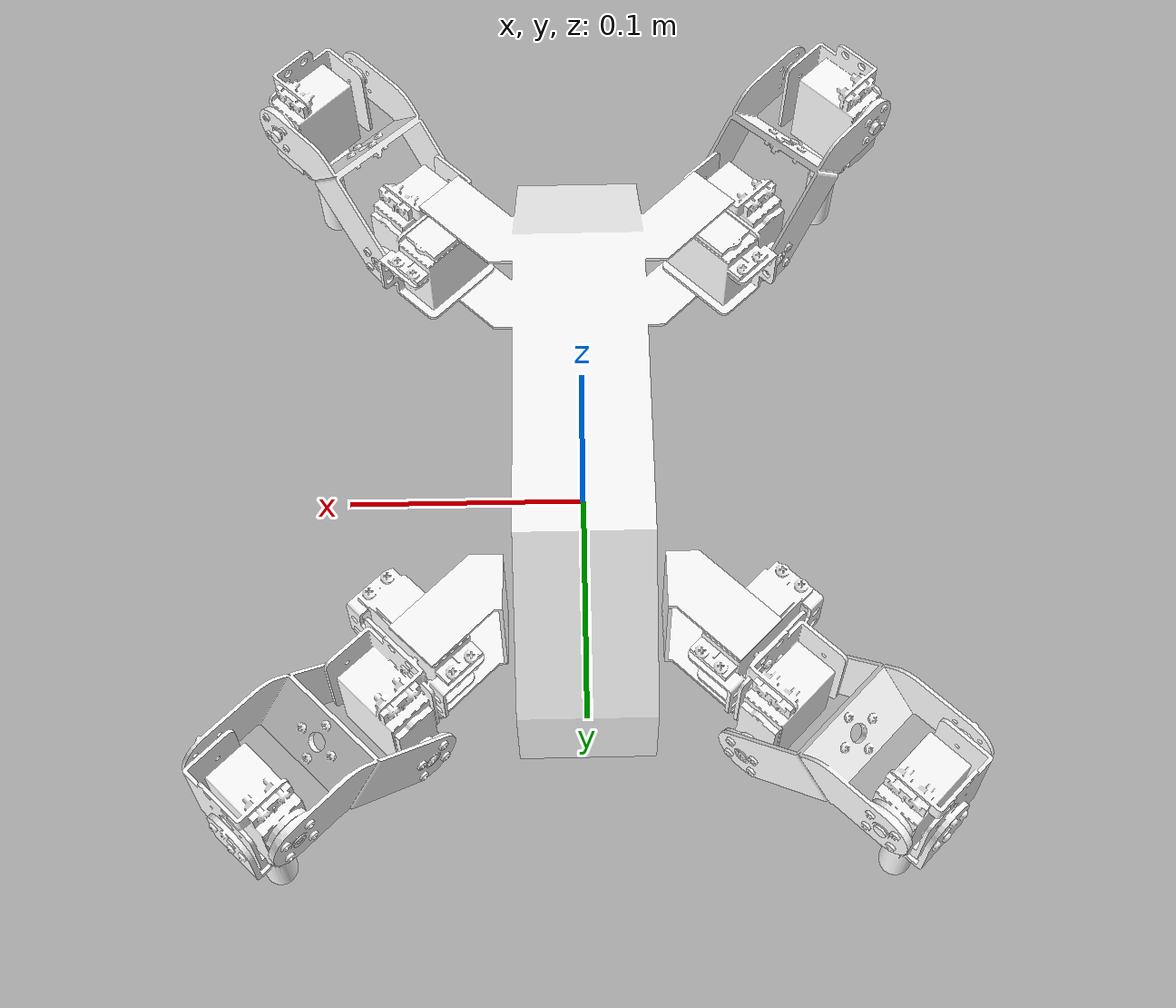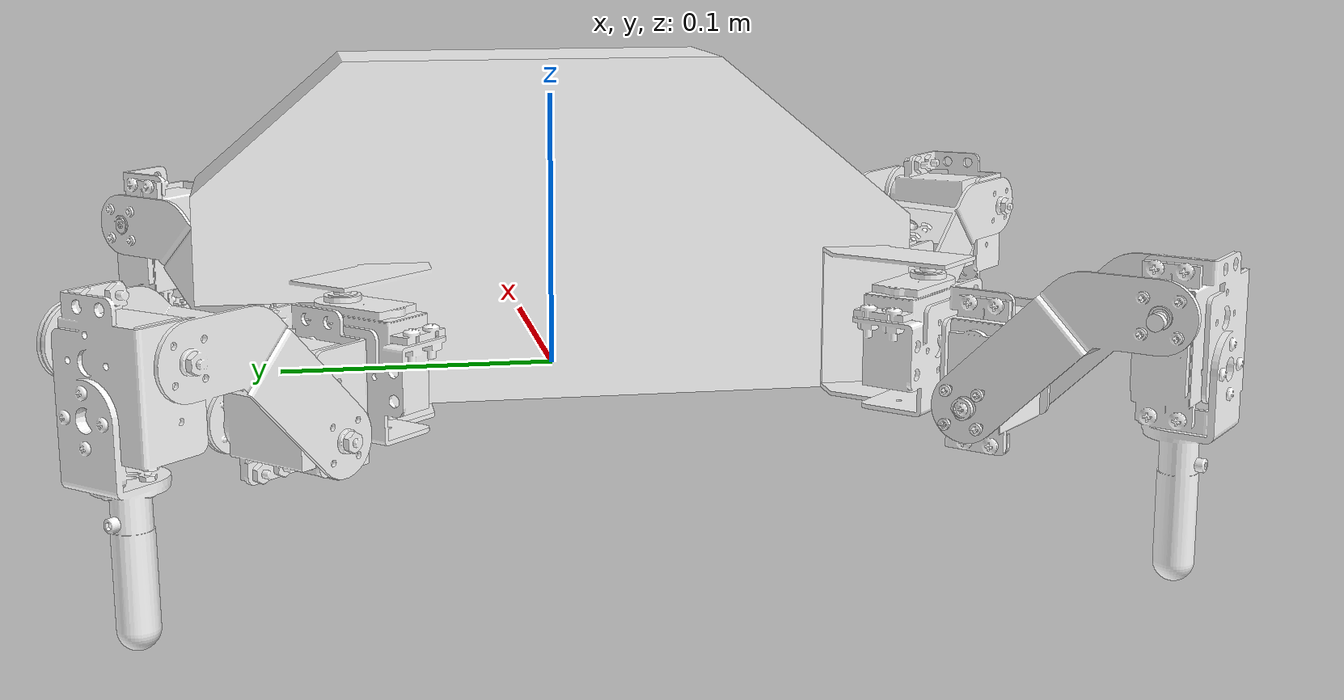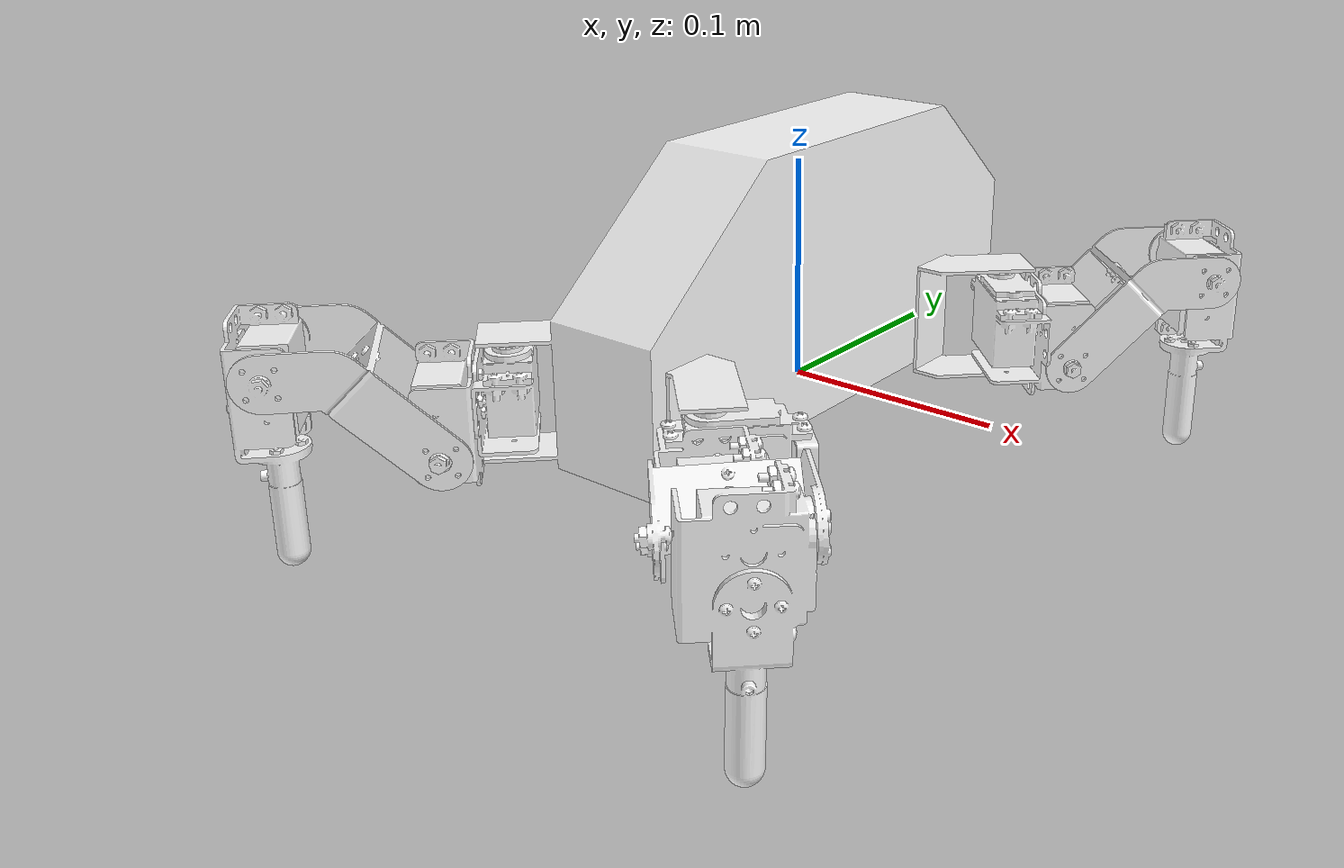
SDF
<sdf version='1.11'>
  <model name='THex_Quadruped'>
    <link name='base_link'>
      <inertial>
        <pose>-1.0171e-10 -0.0086064999999999996 0.036080000000000001 0 0 0</pose>
        <mass>0.30423</mass>
        <inertia>
          <ixx>0.00091370000000000004</ixx>
          <ixy>-1.0719e-13</ixy>
          <ixz>3.2475999999999998e-14</ixz>
          <iyy>0.00019907</iyy>
          <iyz>-4.2938999999999997e-05</iyz>
          <izz>0.00074890999999999998</izz>
        </inertia>
      </inertial>
      <collision name='base_link_collision'>
        <pose>0 0 0 0 0 0</pose>
        <geometry>
          <mesh>
            <scale>1 1 1</scale>
            <uri>model://THex_Quadruped/meshes/base_link_collision.STL</uri>
          </mesh>
        </geometry>
      </collision>
      <visual name='base_link_visual'>
        <pose>0 0 0 0 0 0</pose>
        <geometry>
          <mesh>
            <scale>1 1 1</scale>
            <uri>model://THex_Quadruped/meshes/base_link.STL</uri>
          </mesh>
        </geometry>
        <material>
          <diffuse>1 1 1 1</diffuse>
          <ambient>1 1 1 1</ambient>
        </material>
      </visual>
    </link>
    <joint name='bl_hip_joint' type='revolute'>
      <pose relative_to='base_link'>-0.053162000000000001 -0.12711 0 0 0 -2.3719999999999999</pose>
      <parent>base_link</parent>
      <child>bl_hip</child>
      <axis>
        <xyz>0 0 1</xyz>
        <limit>
          <lower>-0.7853</lower>
          <upper>0.7853</upper>
          <effort>0.94140000000000001</effort>
          <velocity>5.2300000000000004</velocity>
        </limit>
        <dynamics>
          <spring_reference>0</spring_reference>
          <spring_stiffness>0</spring_stiffness>
        </dynamics>
      </axis>
    </joint>
    <link name='bl_hip'>
      <pose relative_to='bl_hip_joint'>0 0 0 0 0 0</pose>
      <inertial>
        <pose>0.015013 -0.0039617999999999997 0.012298999999999999 0 0 0</pose>
        <mass>0.080321000000000004</mass>
        <inertia>
          <ixx>1.9539e-05</ixx>
          <ixy>-2.7001999999999998e-07</ixy>
          <ixz>-3.7333000000000002e-07</ixz>
          <iyy>1.2593e-05</iyy>
          <iyz>-3.7557999999999998e-08</iyz>
          <izz>1.2576e-05</izz>
        </inertia>
      </inertial>
      <collision name='bl_hip_collision'>
        <pose>0 0 0 0 0 0</pose>
        <geometry>
          <mesh>
            <scale>1 1 1</scale>
            <uri>model://THex_Quadruped/meshes/bl_hip_collision.STL</uri>
          </mesh>
        </geometry>
      </collision>
      <visual name='bl_hip_visual'>
        <pose>0 0 0 0 0 0</pose>
        <geometry>
          <mesh>
            <scale>1 1 1</scale>
            <uri>model://THex_Quadruped/meshes/bl_hip.STL</uri>
          </mesh>
        </geometry>
        <material>
          <diffuse>1 1 1 1</diffuse>
          <ambient>1 1 1 1</ambient>
        </material>
      </visual>
    </link>
    <joint name='bl_knee_joint' type='revolute'>
      <pose relative_to='bl_hip'>0.028451000000000001 0 0 -1.5602 -0.78534000000000004 -7.8500057236944626e-17</pose>
      <parent>bl_hip</parent>
      <child>bl_knee</child>
      <axis>
        <xyz>0.010586999999999999 0 -0.99994000000000005</xyz>
        <limit>
          <lower>-1.5707</lower>
          <upper>1.5707</upper>
          <effort>0.94140000000000001</effort>
          <velocity>5.2300000000000004</velocity>
        </limit>
        <dynamics>
          <spring_reference>0</spring_reference>
          <spring_stiffness>0</spring_stiffness>
        </dynamics>
      </axis>
    </joint>
    <link name='bl_knee'>
      <pose relative_to='bl_knee_joint'>0 0 0 0 0 0</pose>
      <inertial>
        <pose>0.045290999999999998 0.0044812999999999997 -0.0012523 0 0 0</pose>
        <mass>0.034680999999999997</mass>
        <inertia>
          <ixx>1.6475000000000001e-05</ixx>
          <ixy>-9.8627e-07</ixy>
          <ixz>7.8716000000000002e-08</ixz>
          <iyy>2.0945999999999999e-05</iyy>
          <iyz>-1.0442e-08</iyz>
          <izz>9.0406999999999997e-06</izz>
        </inertia>
      </inertial>
      <collision name='bl_knee_collision'>
        <pose>0 0 0 0 0 0</pose>
        <geometry>
          <mesh>
            <scale>1 1 1</scale>
            <uri>model://THex_Quadruped/meshes/bl_knee_collision.STL</uri>
          </mesh>
        </geometry>
      </collision>
      <visual name='bl_knee_visual'>
        <pose>0 0 0 0 0 0</pose>
        <geometry>
          <mesh>
            <scale>1 1 1</scale>
            <uri>model://THex_Quadruped/meshes/bl_knee.STL</uri>
          </mesh>
        </geometry>
        <material>
          <diffuse>1 1 1 1</diffuse>
          <ambient>1 1 1 1</ambient>
        </material>
      </visual>
    </link>
    <joint name='bl_foot_joint' type='revolute'>
      <pose relative_to='bl_knee'>0.073068999999999995 0.018655999999999999 -0.00019751 3.1339999999999999 0.0073895000000000054 2.3433999999999999</pose>
      <parent>bl_knee</parent>
      <child>bl_foot</child>
      <axis>
        <xyz>0 0 1</xyz>
        <limit>
          <lower>-1.5707</lower>
          <upper>1.5707</upper>
          <effort>0.94140000000000001</effort>
          <velocity>5.2300000000000004</velocity>
        </limit>
        <dynamics>
          <spring_reference>0</spring_reference>
          <spring_stiffness>0</spring_stiffness>
        </dynamics>
      </axis>
    </joint>
    <link name='bl_foot'>
      <pose relative_to='bl_foot_joint'>0 0 0 0 0 0</pose>
      <inertial>
        <pose>0.021142000000000001 0.0035788 -0.0013921000000000001 0 0 0</pose>
        <mass>0.057595</mass>
        <inertia>
          <ixx>6.4423000000000001e-06</ixx>
          <ixy>3.9845000000000002e-07</ixy>
          <ixz>1.1196e-08</ixz>
          <iyy>1.1705000000000001e-05</iyy>
          <iyz>-3.7378e-07</iyz>
          <izz>9.2683000000000007e-06</izz>
        </inertia>
      </inertial>
      <collision name='bl_foot_collision'>
        <pose>0 0 0 0 0 0</pose>
        <geometry>
          <mesh>
            <scale>1 1 1</scale>
            <uri>model://THex_Quadruped/meshes/bl_foot_collision.STL</uri>
          </mesh>
        </geometry>
      </collision>
      <visual name='bl_foot_visual'>
        <pose>0 0 0 0 0 0</pose>
        <geometry>
          <mesh>
            <scale>1 1 1</scale>
            <uri>model://THex_Quadruped/meshes/bl_foot.STL</uri>
          </mesh>
        </geometry>
        <material>
          <diffuse>1 1 1 1</diffuse>
          <ambient>1 1 1 1</ambient>
        </material>
      </visual>
    </link>
    <joint name='br_hip_joint' type='revolute'>
      <pose relative_to='base_link'>0.053162000000000001 -0.12711 0.00053339999999999995 0 0 -0.77529000000000003</pose>
      <parent>base_link</parent>
      <child>br_hip</child>
      <axis>
        <xyz>0 0 1</xyz>
        <limit>
          <lower>-0.7853</lower>
          <upper>0.7853</upper>
          <effort>0.94140000000000001</effort>
          <velocity>5.2300000000000004</velocity>
        </limit>
        <dynamics>
          <spring_reference>0</spring_reference>
          <spring_stiffness>0</spring_stiffness>
        </dynamics>
      </axis>
    </joint>
    <link name='br_hip'>
      <pose relative_to='br_hip_joint'>0 0 0 0 0 0</pose>
      <inertial>
        <pose>0.014987 0.0036917999999999999 0.011971000000000001 0 0 0</pose>
        <mass>0.080321000000000004</mass>
        <inertia>
          <ixx>1.9536000000000001e-05</ixx>
          <ixy>3.0917000000000001e-07</ixy>
          <ixz>-3.7300000000000002e-07</ixz>
          <iyy>1.2595999999999999e-05</iyy>
          <iyz>4.1086000000000001e-08</iyz>
          <izz>1.2576e-05</izz>
        </inertia>
      </inertial>
      <collision name='br_hip_collision'>
        <pose>0 0 0 0 0 0</pose>
        <geometry>
          <mesh>
            <scale>1 1 1</scale>
            <uri>model://THex_Quadruped/meshes/br_hip_collision.STL</uri>
          </mesh>
        </geometry>
      </collision>
      <visual name='br_hip_visual'>
        <pose>0 0 0 0 0 0</pose>
        <geometry>
          <mesh>
            <scale>1 1 1</scale>
            <uri>model://THex_Quadruped/meshes/br_hip.STL</uri>
          </mesh>
        </geometry>
        <material>
          <diffuse>1 1 1 1</diffuse>
          <ambient>1 1 1 1</ambient>
        </material>
      </visual>
    </link>
    <joint name='br_knee_joint' type='revolute'>
      <pose relative_to='br_hip'>0.028448999999999999 0 0 1.5643 -0.78537999999999997 0</pose>
      <parent>br_hip</parent>
      <child>br_knee</child>
      <axis>
        <xyz>0.0065446999999999996 0 -0.99997999999999998</xyz>
        <limit>
          <lower>-1.5707</lower>
          <upper>1.5707</upper>
          <effort>0.94140000000000001</effort>
          <velocity>5.2300000000000004</velocity>
        </limit>
        <dynamics>
          <spring_reference>0</spring_reference>
          <spring_stiffness>0</spring_stiffness>
        </dynamics>
      </axis>
    </joint>
    <link name='br_knee'>
      <pose relative_to='br_knee_joint'>0 0 0 0 0 0</pose>
      <inertial>
        <pose>0.045282999999999997 -0.0044812999999999997 -0.0010646 0 0 0</pose>
        <mass>0.034680999999999997</mass>
        <inertia>
          <ixx>1.6475000000000001e-05</ixx>
          <ixy>9.8629999999999998e-07</ixy>
          <ixz>4.8663999999999998e-08</ixz>
          <iyy>2.0945999999999999e-05</iyy>
          <iyz>6.4551000000000002e-09</iyz>
          <izz>9.0401000000000001e-06</izz>
        </inertia>
      </inertial>
      <collision name='br_knee_collision'>
        <pose>0 0 0 0 0 0</pose>
        <geometry>
          <mesh>
            <scale>1 1 1</scale>
            <uri>model://THex_Quadruped/meshes/br_knee_collision.STL</uri>
          </mesh>
        </geometry>
      </collision>
      <visual name='br_knee_visual'>
        <pose>0 0 0 0 0 0</pose>
        <geometry>
          <mesh>
            <scale>1 1 1</scale>
            <uri>model://THex_Quadruped/meshes/br_knee.STL</uri>
          </mesh>
        </geometry>
        <material>
          <diffuse>1 1 1 1</diffuse>
          <ambient>1 1 1 1</ambient>
        </material>
      </visual>
    </link>
    <joint name='br_foot_joint' type='revolute'>
      <pose relative_to='br_knee'>0.073065000000000005 -0.018655999999999999 -0.00012210000000000001 -3.1368999999999998 0.0045678000000000021 -2.3433000000000002</pose>
      <parent>br_knee</parent>
      <child>br_foot</child>
      <axis>
        <xyz>0 0 1</xyz>
        <limit>
          <lower>-1.5707</lower>
          <upper>1.5707</upper>
          <effort>0.94140000000000001</effort>
          <velocity>5.2300000000000004</velocity>
        </limit>
        <dynamics>
          <spring_reference>0</spring_reference>
          <spring_stiffness>0</spring_stiffness>
        </dynamics>
      </axis>
    </joint>
    <link name='br_foot'>
      <pose relative_to='br_foot_joint'>0 0 0 0 0 0</pose>
      <inertial>
        <pose>0.020857000000000001 -0.003581 -0.0013921000000000001 0 0 0</pose>
        <mass>0.057595</mass>
        <inertia>
          <ixx>6.4423000000000001e-06</ixx>
          <ixy>-3.9831000000000002e-07</ixy>
          <ixz>1.4001000000000001e-08</ixz>
          <iyy>1.1705000000000001e-05</iyy>
          <iyz>3.7381999999999999e-07</iyz>
          <izz>9.2683000000000007e-06</izz>
        </inertia>
      </inertial>
      <collision name='br_foot_collision'>
        <pose>0 0 0 0 0 0</pose>
        <geometry>
          <mesh>
            <scale>1 1 1</scale>
            <uri>model://THex_Quadruped/meshes/br_foot_collision.STL</uri>
          </mesh>
        </geometry>
      </collision>
      <visual name='br_foot_visual'>
        <pose>0 0 0 0 0 0</pose>
        <geometry>
          <mesh>
            <scale>1 1 1</scale>
            <uri>model://THex_Quadruped/meshes/br_foot.STL</uri>
          </mesh>
        </geometry>
        <material>
          <diffuse>1 1 1 1</diffuse>
          <ambient>1 1 1 1</ambient>
        </material>
      </visual>
    </link>
    <joint name='fl_hip_joint' type='revolute'>
      <pose relative_to='base_link'>-0.059512000000000002 0.078853999999999994 0 0 0 2.3666</pose>
      <parent>base_link</parent>
      <child>fl_hip</child>
      <axis>
        <xyz>0 0 1</xyz>
        <limit>
          <lower>-0.7853</lower>
          <upper>0.7853</upper>
          <effort>0.94140000000000001</effort>
          <velocity>5.2300000000000004</velocity>
        </limit>
        <dynamics>
          <spring_reference>0</spring_reference>
          <spring_stiffness>0</spring_stiffness>
        </dynamics>
      </axis>
    </joint>
    <link name='fl_hip'>
      <pose relative_to='fl_hip_joint'>0 0 0 0 0 0</pose>
      <inertial>
        <pose>0.015006 0.0056423000000000003 0.012298999999999999 0 0 0</pose>
        <mass>0.080321000000000004</mass>
        <inertia>
          <ixx>1.9522e-05</ixx>
          <ixy>-4.3980000000000001e-07</ixy>
          <ixz>-3.7380000000000003e-07</ixz>
          <iyy>1.261e-05</iyy>
          <iyz>6.3953e-09</iyz>
          <izz>1.2576e-05</izz>
        </inertia>
      </inertial>
      <collision name='fl_hip_collision'>
        <pose>0 0 0 0 0 0</pose>
        <geometry>
          <mesh>
            <scale>1 1 1</scale>
            <uri>model://THex_Quadruped/meshes/fl_hip_collision.STL</uri>
          </mesh>
        </geometry>
      </collision>
      <visual name='fl_hip_visual'>
        <pose>0 0 0 0 0 0</pose>
        <geometry>
          <mesh>
            <scale>1 1 1</scale>
            <uri>model://THex_Quadruped/meshes/fl_hip.STL</uri>
          </mesh>
        </geometry>
        <material>
          <diffuse>1 1 1 1</diffuse>
          <ambient>1 1 1 1</ambient>
        </material>
      </visual>
    </link>
    <joint name='fl_knee_joint' type='revolute'>
      <pose relative_to='fl_hip'>0.028448999999999999 0 0 -1.5774999999999999 -0.78537999999999997 -7.8503197062369069e-17</pose>
      <parent>fl_hip</parent>
      <child>fl_knee</child>
      <axis>
        <xyz>-0.0067371999999999996 0 -0.99997999999999998</xyz>
        <limit>
          <lower>-1.5707</lower>
          <upper>1.5707</upper>
          <effort>0.94140000000000001</effort>
          <velocity>5.2300000000000004</velocity>
        </limit>
        <dynamics>
          <spring_reference>0</spring_reference>
          <spring_stiffness>0</spring_stiffness>
        </dynamics>
      </axis>
    </joint>
    <link name='fl_knee'>
      <pose relative_to='fl_knee_joint'>0 0 0 0 0 0</pose>
      <inertial>
        <pose>0.045273000000000001 0.0044812999999999997 -0.00044768999999999999 0 0 0</pose>
        <mass>0.034680999999999997</mass>
        <inertia>
          <ixx>1.6475000000000001e-05</ixx>
          <ixy>-9.8629999999999998e-07</ixy>
          <ixz>-5.0096000000000001e-08</ixz>
          <iyy>2.0945999999999999e-05</iyy>
          <iyz>6.6452000000000002e-09</iyz>
          <izz>9.0402000000000003e-06</izz>
        </inertia>
      </inertial>
      <collision name='fl_knee_collision'>
        <pose>0 0 0 0 0 0</pose>
        <geometry>
          <mesh>
            <scale>1 1 1</scale>
            <uri>model://THex_Quadruped/meshes/fl_knee_collision.STL</uri>
          </mesh>
        </geometry>
      </collision>
      <visual name='fl_knee_visual'>
        <pose>0 0 0 0 0 0</pose>
        <geometry>
          <mesh>
            <scale>1 1 1</scale>
            <uri>model://THex_Quadruped/meshes/fl_knee.STL</uri>
          </mesh>
        </geometry>
        <material>
          <diffuse>1 1 1 1</diffuse>
          <ambient>1 1 1 1</ambient>
        </material>
      </visual>
    </link>
    <joint name='fl_foot_joint' type='revolute'>
      <pose relative_to='fl_knee'>0.073066000000000006 0.018655999999999999 0.00012569 -3.1368 -0.0047025000000000001 2.3433999999999999</pose>
      <parent>fl_knee</parent>
      <child>fl_foot</child>
      <axis>
        <xyz>0 0 1</xyz>
        <limit>
          <lower>-1.5707</lower>
          <upper>1.5707</upper>
          <effort>0.94140000000000001</effort>
          <velocity>5.2300000000000004</velocity>
        </limit>
        <dynamics>
          <spring_reference>0</spring_reference>
          <spring_stiffness>0</spring_stiffness>
        </dynamics>
      </axis>
    </joint>
    <link name='fl_foot'>
      <pose relative_to='fl_foot_joint'>0 0 0 0 0 0</pose>
      <inertial>
        <pose>0.021142000000000001 0.0035788 -0.0013921000000000001 0 0 0</pose>
        <mass>0.057595</mass>
        <inertia>
          <ixx>6.4423000000000001e-06</ixx>
          <ixy>3.9845000000000002e-07</ixy>
          <ixz>1.1196e-08</ixz>
          <iyy>1.1705000000000001e-05</iyy>
          <iyz>-3.7378e-07</iyz>
          <izz>9.2683000000000007e-06</izz>
        </inertia>
      </inertial>
      <collision name='fl_foot_collision'>
        <pose>0 0 0 0 0 0</pose>
        <geometry>
          <mesh>
            <scale>1 1 1</scale>
            <uri>model://THex_Quadruped/meshes/fl_foot_collision.STL</uri>
          </mesh>
        </geometry>
      </collision>
      <visual name='fl_foot_visual'>
        <pose>0 0 0 0 0 0</pose>
        <geometry>
          <mesh>
            <scale>1 1 1</scale>
            <uri>model://THex_Quadruped/meshes/fl_foot.STL</uri>
          </mesh>
        </geometry>
        <material>
          <diffuse>1 1 1 1</diffuse>
          <ambient>1 1 1 1</ambient>
        </material>
      </visual>
    </link>
    <joint name='fr_hip_joint' type='revolute'>
      <pose relative_to='base_link'>0.059512000000000002 0.078853999999999994 0.00053339999999999995 0 0 0.76931000000000005</pose>
      <parent>base_link</parent>
      <child>fr_hip</child>
      <axis>
        <xyz>0 0 1</xyz>
        <limit>
          <lower>-0.7853</lower>
          <upper>0.7853</upper>
          <effort>0.94140000000000001</effort>
          <velocity>5.2300000000000004</velocity>
        </limit>
        <dynamics>
          <spring_reference>0</spring_reference>
          <spring_stiffness>0</spring_stiffness>
        </dynamics>
      </axis>
    </joint>
    <link name='fr_hip'>
      <pose relative_to='fr_hip_joint'>0 0 0 0 0 0</pose>
      <inertial>
        <pose>0.015044 -0.0059121 0.011971000000000001 0 0 0</pose>
        <mass>0.080321000000000004</mass>
        <inertia>
          <ixx>1.9516000000000001e-05</ixx>
          <ixy>4.7874000000000001e-07</ixy>
          <ixz>-3.7331e-07</ixz>
          <iyy>1.2616000000000001e-05</iyy>
          <iyz>-2.8574000000000001e-09</iyz>
          <izz>1.2576e-05</izz>
        </inertia>
      </inertial>
      <collision name='fr_hip_collision'>
        <pose>0 0 0 0 0 0</pose>
        <geometry>
          <mesh>
            <scale>1 1 1</scale>
            <uri>model://THex_Quadruped/meshes/fr_hip_collision.STL</uri>
          </mesh>
        </geometry>
      </collision>
      <visual name='fr_hip_visual'>
        <pose>0 0 0 0 0 0</pose>
        <geometry>
          <mesh>
            <scale>1 1 1</scale>
            <uri>model://THex_Quadruped/meshes/fr_hip.STL</uri>
          </mesh>
        </geometry>
        <material>
          <diffuse>1 1 1 1</diffuse>
          <ambient>1 1 1 1</ambient>
        </material>
      </visual>
    </link>
    <joint name='fr_knee_joint' type='revolute'>
      <pose relative_to='fr_hip'>0.028451000000000001 0 0 1.5816000000000001 -0.78534000000000004 0</pose>
      <parent>fr_hip</parent>
      <child>fr_knee</child>
      <axis>
        <xyz>-0.010779 0 -0.99994000000000005</xyz>
        <limit>
          <lower>-1.5707</lower>
          <upper>1.5707</upper>
          <effort>0.94140000000000001</effort>
          <velocity>5.2300000000000004</velocity>
        </limit>
        <dynamics>
          <spring_reference>0</spring_reference>
          <spring_stiffness>0</spring_stiffness>
        </dynamics>
      </axis>
    </joint>
    <link name='fr_knee'>
      <pose relative_to='fr_knee_joint'>0 0 0 0 0 0</pose>
      <inertial>
        <pose>0.045275000000000003 -0.0044812999999999997 -0.00025994000000000001 0 0 0</pose>
        <mass>0.034680999999999997</mass>
        <inertia>
          <ixx>1.6475000000000001e-05</ixx>
          <ixy>9.8627e-07</ixy>
          <ixz>-8.0146999999999996e-08</ixz>
          <iyy>2.0945999999999999e-05</iyy>
          <iyz>-1.0632000000000001e-08</iyz>
          <izz>9.0406999999999997e-06</izz>
        </inertia>
      </inertial>
      <collision name='fr_knee_collision'>
        <pose>0 0 0 0 0 0</pose>
        <geometry>
          <mesh>
            <scale>1 1 1</scale>
            <uri>model://THex_Quadruped/meshes/fr_knee_collision.STL</uri>
          </mesh>
        </geometry>
      </collision>
      <visual name='fr_knee_visual'>
        <pose>0 0 0 0 0 0</pose>
        <geometry>
          <mesh>
            <scale>1 1 1</scale>
            <uri>model://THex_Quadruped/meshes/fr_knee.STL</uri>
          </mesh>
        </geometry>
        <material>
          <diffuse>1 1 1 1</diffuse>
          <ambient>1 1 1 1</ambient>
        </material>
      </visual>
    </link>
    <joint name='fr_foot_joint' type='revolute'>
      <pose relative_to='fr_knee'>0.073069999999999996 -0.018655999999999999 0.00020110000000000001 3.1339000000000001 -0.0075232000000000007 -2.3433000000000002</pose>
      <parent>fr_knee</parent>
      <child>fr_foot</child>
      <axis>
        <xyz>0 0 1</xyz>
        <limit>
          <lower>-1.5707</lower>
          <upper>1.5707</upper>
          <effort>0.94140000000000001</effort>
          <velocity>5.2300000000000004</velocity>
        </limit>
        <dynamics>
          <spring_reference>0</spring_reference>
          <spring_stiffness>0</spring_stiffness>
        </dynamics>
      </axis>
    </joint>
    <link name='fr_foot'>
      <pose relative_to='fr_foot_joint'>0 0 0 0 0 0</pose>
      <inertial>
        <pose>0.020857000000000001 -0.003581 -0.0013921000000000001 0 0 0</pose>
        <mass>0.057595</mass>
        <inertia>
          <ixx>6.4423000000000001e-06</ixx>
          <ixy>-3.9831000000000002e-07</ixy>
          <ixz>1.4001000000000001e-08</ixz>
          <iyy>1.1705000000000001e-05</iyy>
          <iyz>3.7381999999999999e-07</iyz>
          <izz>9.2683000000000007e-06</izz>
        </inertia>
      </inertial>
      <collision name='fr_foot_collision'>
        <pose>0 0 0 0 0 0</pose>
        <geometry>
          <mesh>
            <scale>1 1 1</scale>
            <uri>model://THex_Quadruped/meshes/fr_foot_collision.STL</uri>
          </mesh>
        </geometry>
      </collision>
      <visual name='fr_foot_visual'>
        <pose>0 0 0 0 0 0</pose>
        <geometry>
          <mesh>
            <scale>1 1 1</scale>
            <uri>model://THex_Quadruped/meshes/fr_foot.STL</uri>
          </mesh>
        </geometry>
        <material>
          <diffuse>1 1 1 1</diffuse>
          <ambient>1 1 1 1</ambient>
        </material>
      </visual>
    </link>
  </model>
</sdf>
